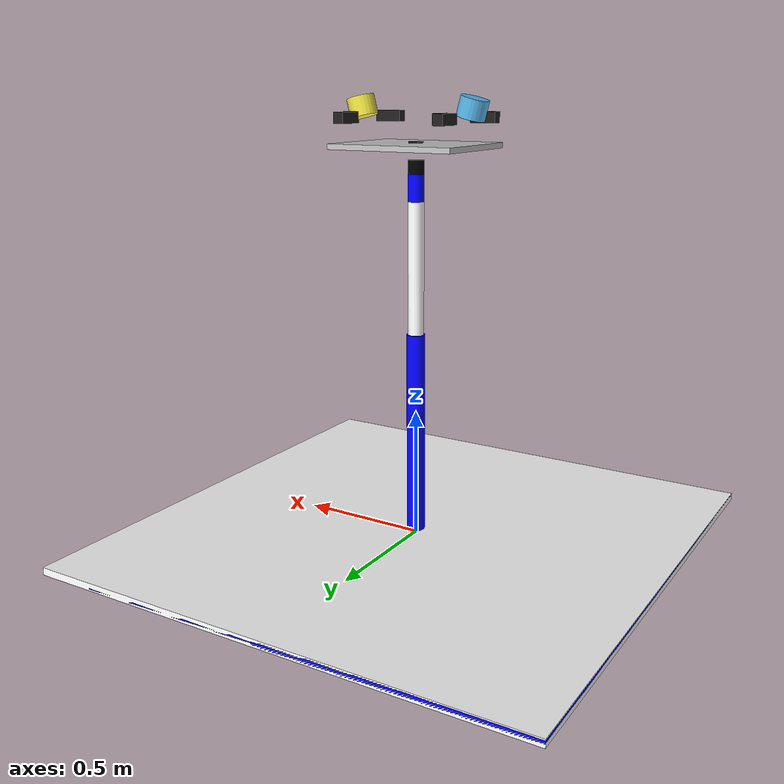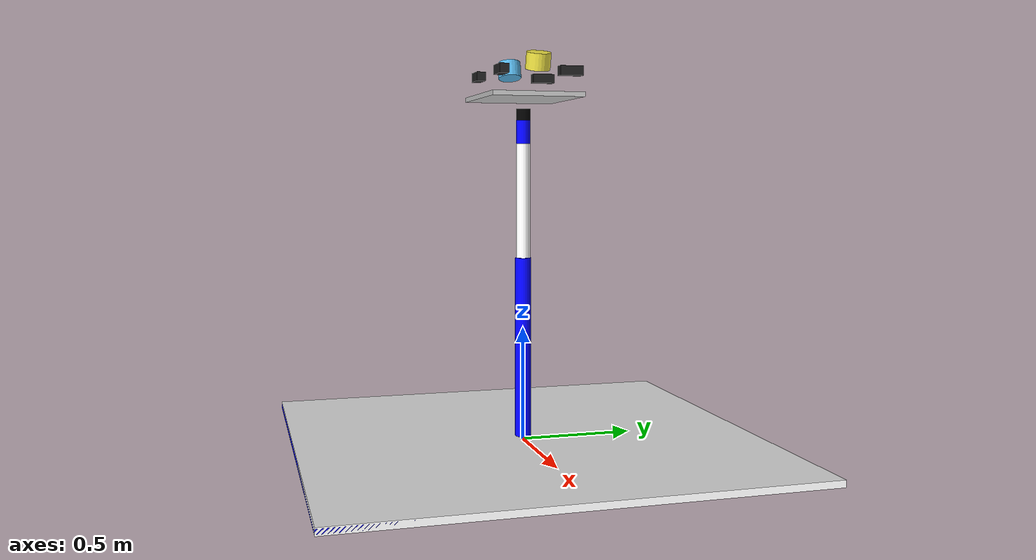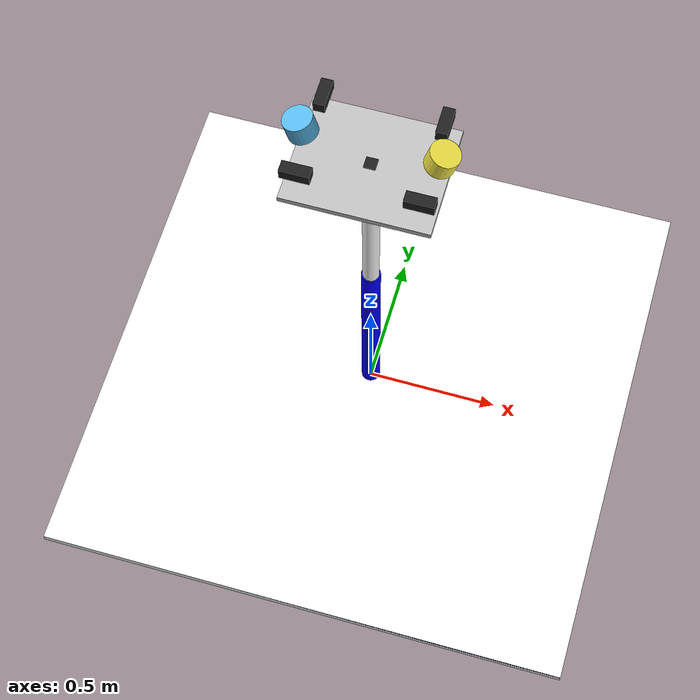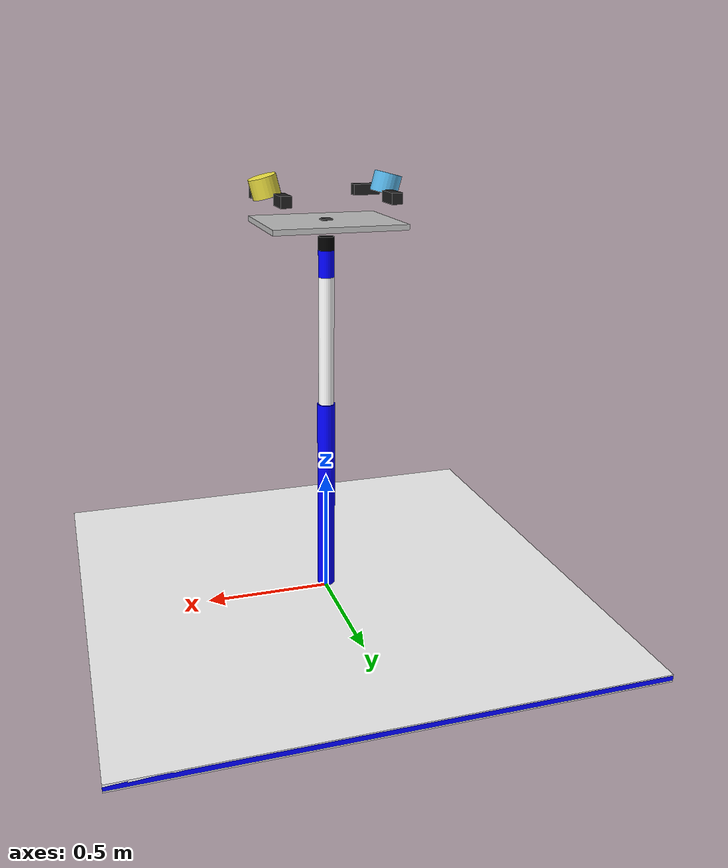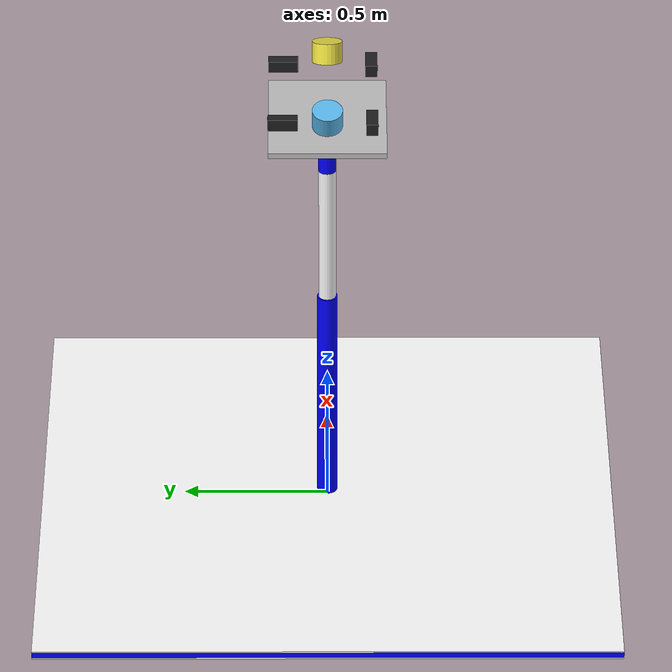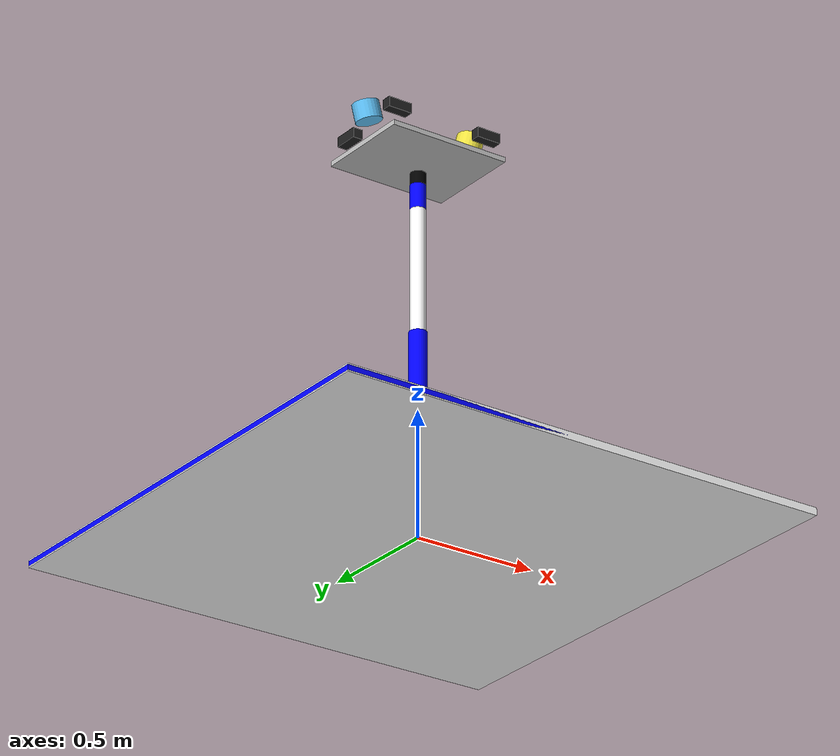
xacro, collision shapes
<?xml version="1.0"?>
<robot name="multi_sensor_platform" xmlns:xacro="http://www.ros.org/wiki/xacro">

    <xacro:property name="PI"   value="3.141592653" />
    <xacro:include filename="$(find platform_gazebo)/urdf/xacro/platform_base.xacro"/>
    <xacro:include filename="$(find velodyne_description)/urdf/VLP-16.urdf.xacro"/>
    <xacro:include filename="$(find platform_gazebo)/urdf/xacro/sensors/camera_gazebo.xacro" />
    <xacro:include filename="$(find platform_gazebo)/urdf/xacro/sensors/imu.xacro" />
    <xacro:include filename="$(find platform_gazebo)/urdf/xacro/simple_motion_support.xacro" />

    <!-- Two velodynes here -->
    <xacro:VLP-16 parent="plat_base" name="velodyne_left" topic="/velodyne_points_left" hz="10" samples="440" gpu="false">
        <origin xyz="-0.22 0 0.1" rpy="0 -0.26 0" />
    </xacro:VLP-16>
    <xacro:VLP-16 parent="plat_base" name="velodyne_right" topic="/velodyne_points_right" hz="10" samples="440" gpu="false">
        <origin xyz="0.22 0 0.1" rpy="0 0.26 0" />
    </xacro:VLP-16>

    <!-- Camera -->
    <xacro:macro name="mount_camera" params="camera_name x y z yaw">
        <joint name="${camera_name}_joint" type="fixed">
            <origin xyz="${x} ${y} ${z}" rpy="0 0 ${yaw}" />
            <parent link="plat_base"/>
            <child link="${camera_name}_link"/>
        </joint>
        <xacro:usb_camera prefix="${camera_name}"/>
    </xacro:macro>

    <!-- front left, front right: look forward -->
    <xacro:mount_camera camera_name="camera_fr" x="0.20" y="0.15" z="0.1" yaw="${PI/2.0}"/>
    <xacro:mount_camera camera_name="camera_fl" x="-0.20" y="0.15" z="0.1" yaw="${PI/2.0}"/>
    <!-- back left, back right: look sideward -->
    <xacro:mount_camera camera_name="camera_br" x="0.20" y="-0.15" z="0.1" yaw="0.0"/>
    <xacro:mount_camera camera_name="camera_bl" x="-0.20" y="-0.15" z="0.1" yaw="${PI}"/>

    <!-- add imu -->
    <joint name="imu_joint" type="fixed">
        <origin xyz="0 0 0.01" rpy="0 0 0" />
        <parent link="plat_base"/>
        <child link="imu_link"/>
    </joint>
    <xacro:imu />

    <!-- connect the arm with the platform -->
    <joint name="arm_plat_joint" type="fixed">
        <origin xyz="0 0 0.1" rpy="0 0 0" />
        <parent link="link4"/>
        <child link="plat_base"/>
    </joint>
    <xacro:support_part />
</robot>

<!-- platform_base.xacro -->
<robot name="platform_base" xmlns:xacro="http://www.ros.org/wiki/xacro">

    <!-- PROPERTY LIST -->
    <xacro:property name="base_mass"   value="2" />
    <xacro:property name="base_width"  value="0.40"/>
    <xacro:property name="base_length" value="0.50"/>

    <!-- Defining the colors  -->
    <material name="gray">
        <color rgba="0.75 0.75 0.75 1"/>
    </material>

    <!-- Macro for inertia matrix -->
    <xacro:macro name="sphere_inertial_matrix" params="m r">
        <inertial>
            <mass value="${m}" />
            <inertia ixx="${2*m*r*r/5}" ixy="0" ixz="0"
                     iyy="${2*m*r*r/5}" iyz="0"
                     izz="${2*m*r*r/5}" />
        </inertial>
    </xacro:macro>
    <xacro:macro name="cylinder_inertial_matrix" params="m r h">
        <inertial>
            <mass value="${m}" />
            <inertia ixx="${m*(3*r*r+h*h)/12}" ixy = "0" ixz = "0"
                     iyy="${m*(3*r*r+h*h)/12}" iyz = "0"
                     izz="${m*r*r/2}" />
        </inertial>
    </xacro:macro>
    <xacro:macro name="inertial_matrix" params="mass">
        <inertial>
            <mass value="${mass}" />
            <inertia ixx="1.0" ixy="0.0" ixz="0.0"
                     iyy="1.0" iyz="0.0"
                     izz="1.0" />
        </inertial>
    </xacro:macro>

    <!-- platform base -->
    <link name="plat_base">
        <visual>
            <origin xyz=" 0 0 0" rpy="0 0 0" />
            <geometry>
                <box size="${base_length} ${base_width} 0.02"/>
            </geometry>
            <material name="gray" />
        </visual>
        <collision>
            <origin xyz=" 0 0 0" rpy="0 0 0" />
            <geometry>
                <box size="${base_length} ${base_width} 0.02"/>
            </geometry>
        </collision>
        <xacro:inertial_matrix mass="${base_mass}"/>
    </link>
</robot>

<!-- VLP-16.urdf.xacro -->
<robot xmlns:xacro="http://www.ros.org/wiki/xacro" name="VLP-16">
  <xacro:property name="M_PI" value="3.1415926535897931" />
  <xacro:macro name="VLP-16" params="*origin is_sim:=true parent:=base_link name:=velodyne tf_prefix:='' topic:=/velodyne_points organize_cloud:=false hz:=10 lasers:=16 samples:=1875 collision_range:=0.3 min_range:=0.0 max_range:=100.0 noise:=0.008 min_angle:=-${M_PI} max_angle:=${M_PI} gpu:=false">

    <joint name="${name}_base_mount_joint" type="fixed">
      <xacro:insert_block name="origin" />
      <parent link="${parent}"/>
      <child link="${name}_base_link"/>
    </joint>

    <link name="${name}_base_link">
      <inertial>
        <mass value="0.83"/>
        <origin xyz="0 0 0.03585"/>
        <inertia ixx="${(0.83 * (3.0*0.0516*0.0516 + 0.0717*0.0717)) / 12.0}" ixy="0" ixz="0"
          iyy="${(0.83 * (3.0*0.0516*0.0516 + 0.0717*0.0717)) / 12.0}" iyz="0"
          izz="${0.5 * 0.83 * (0.0516*0.0516)}"/>
      </inertial>
      <visual>
        <geometry>
          <mesh filename="package://velodyne_description/meshes/VLP16_base_1.dae" />
        </geometry>
      </visual>
      <visual>
        <geometry>
          <mesh filename="package://velodyne_description/meshes/VLP16_base_2.dae" />
        </geometry>
      </visual>
      <collision>
        <origin rpy="0 0 0" xyz="0 0 0.03585"/>
        <geometry>
          <cylinder radius="0.0516" length="0.0717"/>
        </geometry>
      </collision>
    </link>

    <joint name="${name}_base_scan_joint" type="fixed" >
      <origin xyz="0 0 0.0377" rpy="0 0 0" />
      <parent link="${name}_base_link" />
      <child link="${name}"/>
    </joint>

    <link name="${name}">
      <inertial>
        <mass value="0.01"/>
        <origin xyz="0 0 0"/>
        <inertia ixx="1e-7" ixy="0" ixz="0" iyy="1e-7" iyz="0" izz="1e-7"/>
      </inertial>
      <visual>
        <origin xyz="0 0 -0.0377" />
        <geometry>
          <mesh filename="package://velodyne_description/meshes/VLP16_scan.dae" />
        </geometry>
      </visual>
      <collision>
        <geometry>
          <sphere radius="0"/>
        </geometry>
      </collision>
    </link>

    <!-- Gazebo requires the velodyne_gazebo_plugins package -->
    <xacro:if value="${is_sim}">
        <gazebo reference="${name}">
            <xacro:if value="${gpu}">
                <sensor type="gpu_ray" name="${name}-VLP16">
                <pose>0 0 0 0 0 0</pose>
                <visualize>false</visualize>
                <update_rate>${hz}</update_rate>
                <ray>
                    <scan>
                    <horizontal>
                        <samples>${samples}</samples>
                        <resolution>1</resolution>
                        <min_angle>${min_angle}</min_angle>
                        <max_angle>${max_angle}</max_angle>
                    </horizontal>
                    <vertical>
                        <samples>${lasers}</samples>
                        <resolution>1</resolution>
                        <min_angle>-${15.0*M_PI/180.0}</min_angle>
                        <max_angle> ${15.0*M_PI/180.0}</max_angle>
                    </vertical>
                    </scan>
                    <range>
                    <min>${collision_range}</min>
                    <max>${max_range+1}</max>
                    <resolution>0.001</resolution>
                    </range>
                    <noise>
                    <type>gaussian</type>
                    <mean>0.0</mean>
                    <stddev>0.0</stddev>
                    </noise>
                </ray>
                <plugin name="gazebo_ros_laser_controller" filename="libgazebo_ros_velodyne_laser.so">
                    <ros>
                    <namespace>/${name}</namespace>
                    <remapping>~/out:=${topic}</remapping>
                    </ros>
                    <tf_prefix>${tf_prefix}</tf_prefix>
                    <frame_name>${name}</frame_name>
                    <organize_cloud>${organize_cloud}</organize_cloud>
                    <min_range>${min_range}</min_range>
                    <max_range>${max_range}</max_range>
                    <gaussian_noise>${noise}</gaussian_noise>
                </plugin>
                </sensor>
            </xacro:if>
            <xacro:unless value="${gpu}">
                <sensor type="ray" name="${name}-VLP16">
                <pose>0 0 0 0 0 0</pose>
                <visualize>false</visualize>
                <update_rate>${hz}</update_rate>
                <ray>
                    <scan>
                    <horizontal>
                        <samples>${samples}</samples>
                        <resolution>1</resolution>
                        <min_angle>${min_angle}</min_angle>
                        <max_angle>${max_angle}</max_angle>
                    </horizontal>
                    <vertical>
                        <samples>${lasers}</samples>
                        <resolution>1</resolution>
                        <min_angle>-${15.0*M_PI/180.0}</min_angle>
                        <max_angle> ${15.0*M_PI/180.0}</max_angle>
                    </vertical>
                    </scan>
                    <range>
                    <min>${collision_range}</min>
                    <max>${max_range+1}</max>
                    <resolution>0.001</resolution>
                    </range>
                    <noise>
                    <type>gaussian</type>
                    <mean>0.0</mean>
                    <stddev>0.0</stddev>
                    </noise>
                </ray>
                <plugin name="gazebo_ros_laser_controller" filename="libgazebo_ros_velodyne_laser.so">
                    <ros>
                    <namespace>/${name}</namespace>
                    <remapping>~/out:=${topic}</remapping>
                    </ros>
                    <tf_prefix>${tf_prefix}</tf_prefix>
                    <frame_name>${name}</frame_name>
                    <organize_cloud>${organize_cloud}</organize_cloud>
                    <min_range>${min_range}</min_range>
                    <max_range>${max_range}</max_range>
                    <gaussian_noise>${noise}</gaussian_noise>
                </plugin>
                </sensor>
            </xacro:unless>
        </gazebo>
    </xacro:if>

  </xacro:macro>
</robot>

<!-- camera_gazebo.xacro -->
<robot xmlns:xacro="http://www.ros.org/wiki/xacro" name="camera">

    <xacro:macro name="usb_camera" params="prefix:=camera">
        <!-- Create laser reference frame -->
        <link name="${prefix}_link">
            <inertial>
                <mass value="0.1" />
                <origin xyz="0 0 0" />
                <inertia ixx="0.01" ixy="0.0" ixz="0.0"
                         iyy="0.01" iyz="0.0"
                         izz="0.01" />
            </inertial>

            <visual>
                <origin xyz=" 0 0 0 " rpy="0 0 0" />
                <geometry>
                    <box size="0.1 0.04 0.04" />
                </geometry>
                <material name="black"/>
            </visual>

            <collision>
                <origin xyz="0.0 0.0 0.0" rpy="0 0 0" />
                <geometry>
                    <box size="0.1 0.04 0.04" />
                </geometry>
            </collision>
        </link>
        <link name="${prefix}_link_optical" />
        <joint name="${prefix}_optical_joint" type="fixed">
            <origin rpy="-1.57079632679 0 -1.57079632679" xyz="0 0 0" />
            <parent link="${prefix}_link" />
            <child link="${prefix}_link_optical" />
        </joint>

        <gazebo reference="${prefix}_link">
            <material>Gazebo/Black</material>
        </gazebo>

        <gazebo reference="${prefix}_link">
            <sensor type="camera" name="camera_node">
                <update_rate>30.0</update_rate>
                <camera name="head">
                    <horizontal_fov>1.3962634</horizontal_fov>
                    <image>
                        <width>1800</width>
                        <height>1800</height>
                        <format>L8</format>
                    </image>
                    <clip>
                        <near>0.02</near>
                        <far>300</far>
                    </clip>
                    <noise>
                        <type>gaussian</type>
                        <mean>0.0</mean>
                        <stddev>0.007</stddev>
                    </noise>
                </camera>
                <plugin name="gazebo_camera" filename="libgazebo_ros_camera.so">
                    <alwaysOn>true</alwaysOn>
                    <updateRate>0.0</updateRate>
                    <cameraName>/${prefix}</cameraName>
                    <imageTopicName>image_raw</imageTopicName>
                    <cameraInfoTopicName>camera_info</cameraInfoTopicName>
                    <frameName>${prefix}_link_optical</frameName>
                    <hackBaseline>0.0</hackBaseline>
                    <distortionK1>0.0</distortionK1>
                    <distortionK2>0.0</distortionK2>
                    <distortionK3>0.0</distortionK3>
                    <distortionT1>0.0</distortionT1>
                    <distortionT2>0.0</distortionT2>
                </plugin>
            </sensor>
        </gazebo>

    </xacro:macro>
</robot>

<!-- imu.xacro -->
<robot xmlns:xacro="http://www.ros.org/wiki/xacro" name="imu">

    <xacro:macro name="imu">

        <link name="imu_link">
            <inertial>
                <mass value="0.1" />
                <origin xyz="0 0 0" />
                <inertia ixx="0.01" ixy="0.0" ixz="0.0"
                         iyy="0.01" iyz="0.0"
                         izz="0.01" />
            </inertial>

            <visual>
                <origin xyz=" 0 0 0 " rpy="0 0 0" />
                <geometry>
                    <box size="0.04 0.04 0.01" />
                </geometry>
                <material name="black"/>
            </visual>

            <collision>
                <origin xyz="0.0 0.0 0.0" rpy="0 0 0" />
                <geometry>
                    <box size="0.04 0.04 0.01" />
                </geometry>
            </collision>
        </link>
        <gazebo reference="imu_link">
            <material>Gazebo/Black</material>
        </gazebo>
        <gazebo reference="imu_link">
            <gravity>true</gravity>
            <sensor name="imu_sensor" type="imu">
                <always_on>true</always_on>
                <update_rate>100</update_rate>
                <visualize>true</visualize>
                <topic>__default_topic__</topic>
                <plugin filename="libgazebo_ros_imu_sensor.so" name="imu_plugin">
                    <topicName>imu</topicName>
                    <bodyName>imu_link</bodyName>
                    <updateRateHZ>100.0</updateRateHZ>
                    <gaussianNoise>0.0</gaussianNoise>
                    <xyzOffset>0 0 0</xyzOffset>
                    <rpyOffset>0 0 0</rpyOffset>
                    <frameName>imu_link</frameName>
                </plugin>
                <pose>0 0 0 0 0 0</pose>
            </sensor>
        </gazebo>
    </xacro:macro>
</robot>

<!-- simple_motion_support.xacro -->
<robot name="arm" xmlns:xacro="http://ros.org/wiki/xacro">

    <xacro:macro name="support_part">
    <!-- Defining the colors used in this robot -->
    <material name="Black">
        <color rgba="0 0 0 1"/>
    </material>

    <material name="White">
        <color rgba="1 1 1 1"/>
    </material>

    <material name="Blue">
        <color rgba="0 0 1 1"/>
    </material>

    <!-- Constants -->
    <xacro:property name="M_PI" value="3.14159"/>

    <xacro:property name="x_limit" value="1.2" />
    <xacro:property name="y_limit" value="1.2" />

    <!-- link1 properties -->
    <xacro:property name="link1_width" value="0.035" />
    <xacro:property name="link1_len" value="0.80" />

    <!-- link2 properties: link2_len control the height of the platform and need to satisfy link2_len <= link1_len -->
    <xacro:property name="link2_width" value="0.03" />
    <xacro:property name="link2_len" value="0.5" />

    <!-- link3 properties -->
    <xacro:property name="link3_width" value="0.03" />
    <xacro:property name="link3_len" value="0.1" />

    <!-- link4 properties -->
    <xacro:property name="link4_width" value="0.03" />
    <xacro:property name="link4_len" value="0.05" />

    <!-- Inertial matrix -->
    <xacro:macro name="inertial_matrix" params="mass">
        <inertial>
            <mass value="${mass}" />
            <inertia ixx="1.0" ixy="0.0" ixz="0.0" iyy="0.5" iyz="0.0" izz="1.0" />
        </inertial>
    </xacro:macro>

    <!-- ///////////////////////////////////////   bottom_joint   ////////////////////////////////////////// -->

    <link name="world"/>

    <!-- /////////////////////////////////////   x axis planar    ////////////////////////////////////////////// -->
    <link name="x_axis_planar">
        <visual>
            <origin xyz="0 0 0" rpy="0 0 0" />
            <geometry>
                <box size="2.0 2.0 0.02" />
            </geometry>
            <material name="Blue" />
        </visual>
        <collision>
            <origin xyz="0 0 0" rpy="0 0 0" />
            <geometry>
                <box size="2.0 2.0 0.02" />
            </geometry>
        </collision>
        <xacro:inertial_matrix mass="0.1"/>
    </link>
    <!-- /////////////////////////////////////   x axis planar    ////////////////////////////////////////////// -->
    <link name="y_axis_planar">
        <visual>
            <origin xyz="0 0 0" rpy="0 0 0" />
            <geometry>
                <box size="2.0 2.0 0.03" />
            </geometry>
            <material name="White" />
        </visual>
        <collision>
            <origin xyz="0 0 0" rpy="0 0 0" />
            <geometry>
                <box size="2.0 2.0 0.03" />
            </geometry>
        </collision>
        <xacro:inertial_matrix mass="0.1"/>
    </link>

    <joint name="x_axis_joint" type="prismatic">
        <parent link="world"/>
        <child link="x_axis_planar"/>
        <origin xyz="0 0.0 0.00" rpy="0 0 0" />
        <axis xyz="1 0 0" />
        <limit effort="50" velocity="1" lower="-${x_limit}" upper="${x_limit}" />
    </joint>
    <joint name="y_axis_joint" type="prismatic">
        <parent link="x_axis_planar"/>
        <child link="y_axis_planar"/>
        <origin xyz="0 0.0 0.0" rpy="0 0 0" />
        <axis xyz="0 1 0" />
        <limit effort="50" velocity="1" lower="-${y_limit}" upper="${y_limit}" />
    </joint>

        <joint name="joint1" type="continuous">
            <parent link="y_axis_planar"/>
            <child link="link1"/>
            <origin xyz="0 0.0 0.01" rpy="0 0 0" />
            <axis xyz="0 0 1" />
            <dynamics damping="50" friction="1"/>
        </joint>
     /////////////////////////////////////   LINK1  //////////////////////////////////////////////
        <link name="link1" >
            <visual>
                <origin xyz="0 0 ${link1_len/2}" rpy="0 0 0" />
                <geometry>
                    <cylinder radius="${link1_width}" length="${link1_len}"/>
                </geometry>
                <material name="Blue" />
            </visual>

            <collision>
                <origin xyz="0 0 ${link1_len/2}" rpy="0 0 0" />
                <geometry>
                    <cylinder radius="${link1_width}" length="${link1_len}"/>
                </geometry>
            </collision>
            <xacro:inertial_matrix mass="1"/>
        </link>

        <joint name="joint2" type="prismatic">
            <parent link="link1"/>
            <child link="link2"/>
            <origin xyz="0 0.0 ${link1_len}" rpy="0 0 0" />
            <axis xyz="0 0 1" />
            <limit effort="3000" velocity="1" lower="-${link2_len}" upper="0" />
            <dynamics damping="50" friction="1"/>
        </joint>

    <!-- ///////////////////////////////////////   LINK2  ////////////////////////////////////////////// -->
    <link name="link2" >
        <visual>
            <origin xyz="0 0 ${link2_len/2}" rpy="0 0 0" />
            <geometry>
                <cylinder radius="${link2_width}" length="${link2_len}"/>
            </geometry>
            <material name="White" />
        </visual>

        <collision>
            <origin xyz="0 0 ${link2_len/2}" rpy="0 0 0" />
            <geometry>
                <cylinder radius="${link2_width}" length="${link2_len}"/>
            </geometry>
        </collision>
        <xacro:inertial_matrix mass="1"/>
    </link>

    <joint name="joint3" type="revolute">
        <parent link="link2"/>
        <child link="link3"/>
        <origin xyz="0 0 ${link2_len}" rpy="0 0 0" />
        <axis xyz="1 0 0" />
        <limit effort="300" velocity="1" lower="-1.8" upper="1.8" />
        <dynamics damping="50" friction="1"/>
    </joint>

    <!-- /////////////////////////////////   LINK3  ///////////////////////////////////////////////////// -->
    <link name="link3" >
        <visual>
            <origin xyz="0 0 ${link3_len/2}" rpy="0 0 0" />
            <geometry>
                <cylinder radius="${link3_width}" length="${link3_len}"/>
            </geometry>
            <material name="Blue" />
        </visual>
        <collision>
            <origin xyz="0 0 ${link3_len/2}" rpy="0 0 0" />
            <geometry>
                <cylinder radius="${link3_width}" length="${link3_len}"/>
            </geometry>
        </collision>
        <xacro:inertial_matrix mass="1"/>
    </link>

    <joint name="joint4" type="revolute">
        <parent link="link3"/>
        <child link="link4"/>
        <origin xyz="0.0 0.0 ${link3_len}" rpy="0 0 0" />
        <axis xyz="0 1 0" />
        <limit effort="300" velocity="1" lower="-1.8" upper="1.8" />
        <dynamics damping="50" friction="1"/>
    </joint>

    <!-- ///////////////////////////////////   LINK4  //////////////////////////////////////////////// -->
    <link name="link4" >
        <visual>
            <origin xyz="0 0 ${link4_len/2}" rpy="0 0 0" />
            <geometry>
                <cylinder radius="${link4_width}" length="${link4_len}"/>
            </geometry>
            <material name="Black" />
        </visual>
        <collision>
            <origin xyz="0 0 ${link4_len/2}" rpy="0 0 0" />
            <geometry>
                <cylinder radius="${link4_width}" length="${link4_len}"/>
            </geometry>
        </collision>
        <xacro:inertial_matrix mass="1"/>
    </link>

    <!-- /////////////////////////////////   Gazebo   ////////////////////////////////////// -->
    <gazebo reference="x_axis_planar">
        <material>Gazebo/Blue</material>
    </gazebo>
    <gazebo reference="y_axis_planar">
        <material>Gazebo/White</material>
    </gazebo>
    <gazebo reference="link1">
        <material>Gazebo/Blue</material>
    </gazebo>
    <gazebo reference="link2">
        <material>Gazebo/White</material>
    </gazebo>
    <gazebo reference="link3">
        <material>Gazebo/Blue</material>
    </gazebo>
    <gazebo reference="link4">
        <material>Gazebo/Black</material>
    </gazebo>

    <!-- Transmissions for ROS Control -->
    <xacro:macro name="transmission_block" params="joint_name">
        <transmission name="tran_${joint_name}">
            <type>transmission_interface/SimpleTransmission</type>
            <joint name="${joint_name}">
                <hardwareInterface>hardware_interface/EffortJointInterface</hardwareInterface>
            </joint>
            <actuator name="motor_${joint_name}">
                <hardwareInterface>hardware_interface/EffortJointInterface</hardwareInterface>
                <mechanicalReduction>1</mechanicalReduction>
            </actuator>
        </transmission>
    </xacro:macro>

    <xacro:transmission_block joint_name="joint1"/>
    <xacro:transmission_block joint_name="x_axis_joint"/>
    <xacro:transmission_block joint_name="y_axis_joint"/>
    <xacro:transmission_block joint_name="joint2"/>
    <xacro:transmission_block joint_name="joint3"/>
    <xacro:transmission_block joint_name="joint4"/>

    <!-- ros_control plugin -->
    <gazebo>
        <plugin name="gazebo_ros_control" filename="libgazebo_ros_control.so">
            <robotNamespace>/multi_sensor_platform</robotNamespace>
        </plugin>
    </gazebo>
    </xacro:macro>
</robot>
